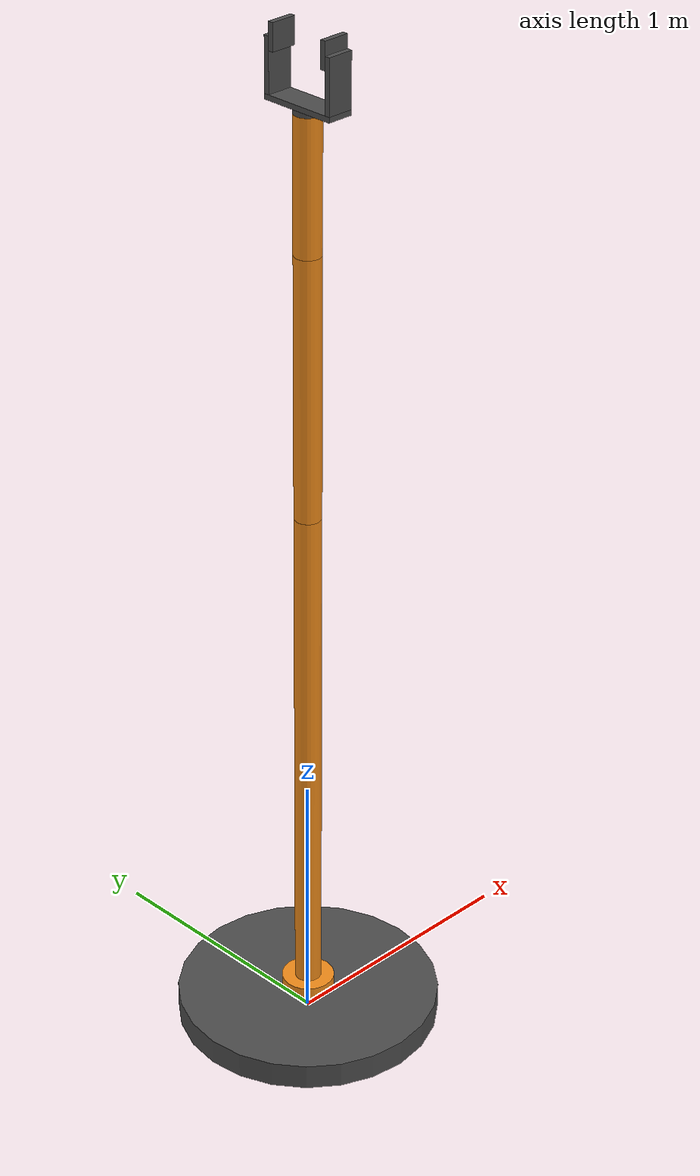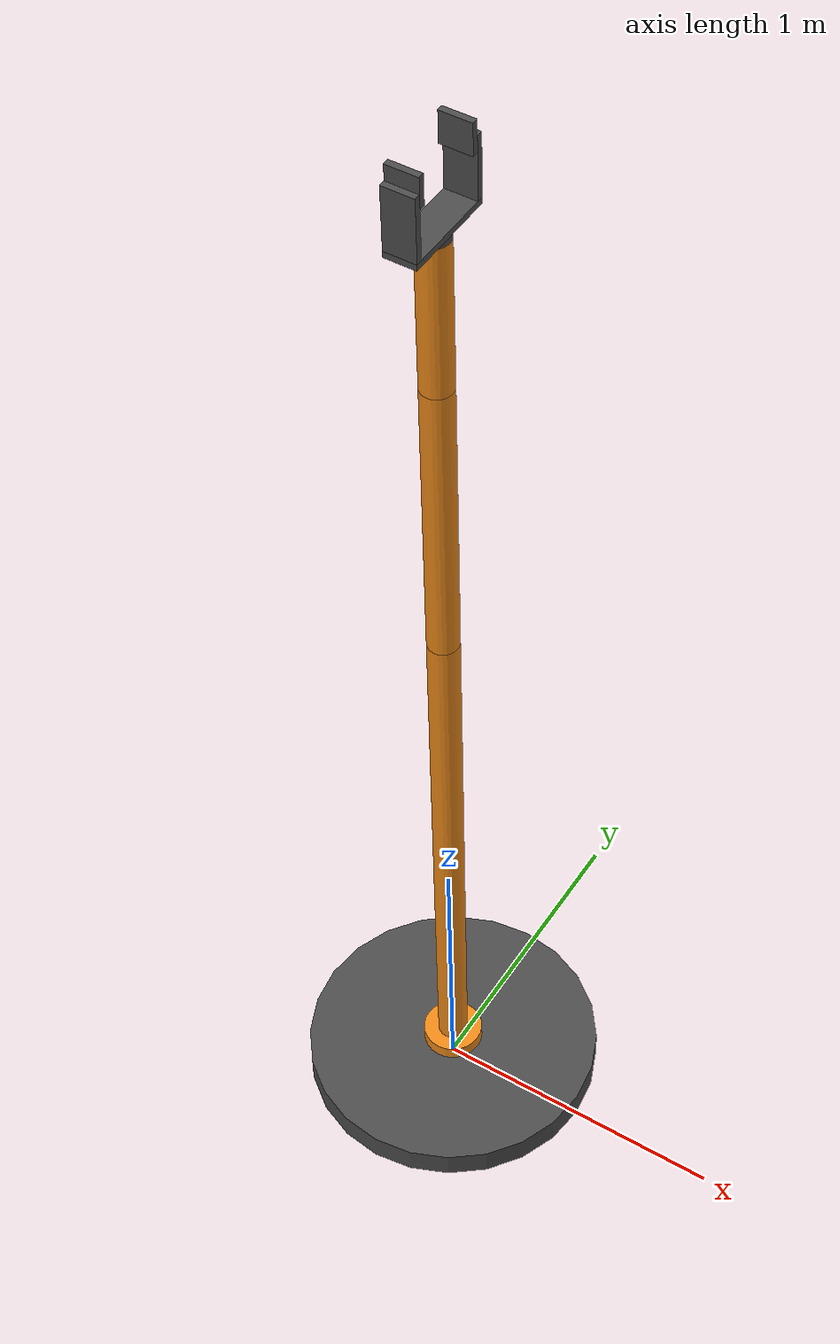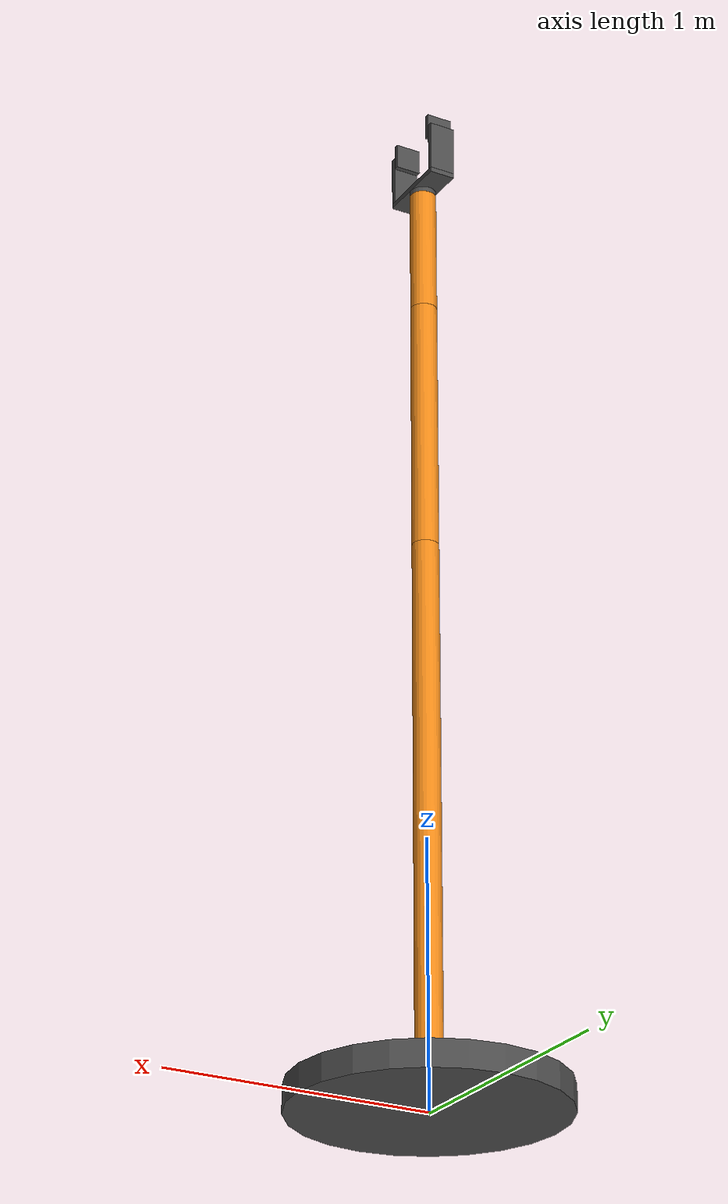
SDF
<?xml version='1.0'?>
<sdf version='1.7'>
    <model name="arm">
        <static>false</static>
        <link name='base'>
            <pose>0 0 .05 0 0 0</pose>
            <inertial>
                <mass>50</mass>
            </inertial>
            <collision name='collision'>
                <geometry>
                    <cylinder>
                        <radius>.5</radius>
                        <length>.1</length>
                    </cylinder>
                </geometry>
            </collision>

            <visual name='visual'>
                <geometry>
                    <cylinder>
                        <radius>.5</radius>
                        <length>.1</length>
                    </cylinder>
                </geometry>
                <material>
                    <script>
                        <name>Gazebo/DarkGrey</name>
                        <uri>file://media/materials/scripts/gazebo.material</uri>
                    </script>
                </material>
            </visual>
        </link>
        <link name='arm1'>
            <pose>0 0 .125 0 0 0</pose>
            <inertial>
                <mass>.05</mass>
            </inertial>
            <collision name='collision'>
                <geometry>
                    <cylinder>
                        <radius>.1</radius>
                        <length>.05</length>
                    </cylinder>
                </geometry>
            </collision>

            <visual name='visual'>
                <geometry>
                    <cylinder>
                        <radius>.1</radius>
                        <length>.05</length>
                    </cylinder>
                </geometry>
                <material>
                    <script>
                        <name>Gazebo/Orange</name>
                        <uri>file://media/materials/scripts/gazebo.material</uri>
                    </script>
                </material>
            </visual>
        </link>
        <link name='arm2'>
            <pose>0 0 1.15 0 0 0</pose>
            <inertial>
                <mass>0.5</mass>
            </inertial>
            <collision name='collision'>
                <geometry>
                    <cylinder>
                        <radius>.05</radius>
                        <length>2.0</length>
                    </cylinder>
                </geometry>
            </collision>

            <visual name='visual'>
                <geometry>
                    <cylinder>
                        <radius>.05</radius>
                        <length>2.0</length>
                    </cylinder>
                </geometry>
                <material>
                    <script>
                        <name>Gazebo/Orange</name>
                        <uri>file://media/materials/scripts/gazebo.material</uri>
                    </script>
                </material>
            </visual>
        </link>
        <link name="arm3">
            <pose>0 0 2.65 0 0 0</pose>
            <inertial>
                <mass>0.25</mass>
            </inertial>
            <collision name="collision">
                <geometry>
                    <cylinder>
                        <radius>.05</radius>
                        <length>1</length>
                    </cylinder>
                </geometry>
            </collision>
            <visual name="visual">
                <geometry>
                    <cylinder>
                        <radius>.05</radius>
                        <length>1</length>
                    </cylinder>
                </geometry>
                <material>
                    <script>
                        <name>Gazebo/Orange</name>
                        <uri>file://media/materials/scripts/gazebo.material</uri>
                    </script>
                </material>
            </visual>
        </link>
        <link name="arm4">
            <pose>0 0 3.4 0 0 0</pose>
            <inertial>
                <mass>.125</mass>
            </inertial>
            <collision name="collision">
                <geometry>
                    <cylinder>
                        <radius>.05</radius>
                        <length>0.5</length>
                    </cylinder>
                </geometry>
            </collision>
            <visual name="visual">
                <geometry>
                    <cylinder>
                        <radius>.05</radius>
                        <length>0.5</length>
                    </cylinder>
                </geometry>
                <material>
                    <script>
                        <name>Gazebo/Orange</name>
                        <uri>file://media/materials/scripts/gazebo.material</uri>
                    </script>
                </material>
            </visual>
        </link>
        <link name="palm">
            <pose>0 0 3.66 0 0 0</pose>
            <inertial>
                <mass>.005</mass>
            </inertial>
            <collision name="collision">
                <geometry>
                    <cylinder>
                        <radius>.05</radius>
                        <length>.02</length>
                    </cylinder>
                </geometry>
            </collision>
            <visual name="visual">
                <geometry>
                    <cylinder>
                        <radius>.05</radius>
                        <length>.02</length>
                    </cylinder>
                </geometry>
                <material>
                    <script>
                        <name>Gazebo/DarkGrey</name>
                        <uri>file://media/materials/scripts/gazebo.material</uri>
                    </script>
                </material>
            </visual>
        </link>
        <link name="palm_jnt">
            <pose>0 0 3.68 0 0 0</pose>
            <inertial>
                <mass>.005</mass>
            </inertial>
            <collision name="collision">
                <geometry>
                    <box>
                        <size>.1 .3 .02</size>
                    </box>
                </geometry>
            </collision>
            <visual name="visual">
                <geometry>
                    <box>
                        <size>.1 .3 .02</size>
                    </box>
                </geometry>
                <material>
                    <script>
                        <name>Gazebo/DarkGrey</name>
                        <uri>file://media/materials/scripts/gazebo.material</uri>
                    </script>
                </material>
            </visual>

        </link>
        <link name="left_finger">
            <gravity>0</gravity>
            <pose>0 0.14 3.79 0 0 0</pose>
            <inertial>
                <mass>.005</mass>
            </inertial>
            <collision name="collision">
                <geometry>
                    <box>
                        <size>.1 .02 .2</size>
                    </box>
                </geometry>
                <surface>
                    <friction>
                        <ode>
                            <mu>500</mu>
                            <mu2>500</mu2>
                            <slip1>0.0</slip1>
                            <slip2>0.0</slip2>
                        </ode>
                    </friction>
                </surface>
            </collision>
            <visual name="visual">
                <geometry>
                    <box>
                        <size>.1 .02 .2</size>
                    </box>
                </geometry>
                <material>
                    <script>
                        <name>Gazebo/DarkGrey</name>
                        <uri>file://media/materials/scripts/gazebo.material</uri>
                    </script>
                </material>
            </visual>

        </link>
        <link name="left_finger_tip">
            <pose>0 0.12 3.89 0 0 0</pose>
            <inertial>
                <mass>.005</mass>
            </inertial>
            <collision name="collision">
                <geometry>
                    <box>
                        <size>.1 .02 .1</size>
                    </box>
                </geometry>
                <surface>
                    <friction>
                        <ode>
                            <mu>500</mu>
                            <mu2>500</mu2>
                            <slip1>0.0</slip1>
                            <slip2>0.0</slip2>
                        </ode>
                    </friction>
                </surface>
            </collision>
            <visual name="visual">
                <geometry>
                    <box>
                        <size>.1 .02 .1</size>
                    </box>
                </geometry>
                <material>
                    <script>
                        <name>Gazebo/DarkGrey</name>
                        <uri>file://media/materials/scripts/gazebo.material</uri>
                    </script>
                </material>
            </visual>
        </link>
        <link name="right_finger">
            <pose>0 -0.14 3.79 0 0 0</pose>
            <inertial>
                <mass>.005</mass>
            </inertial>
            <collision name="collision">
                <geometry>
                    <box>
                        <size>.1 .02 .2</size>
                    </box>
                </geometry>
                <surface>
                    <friction>
                        <ode>
                            <mu>500</mu>
                            <mu2>500</mu2>
                            <slip1>0.0</slip1>
                            <slip2>0.0</slip2>
                        </ode>
                    </friction>
                </surface>
            </collision>
            <visual name="visual">
                <geometry>
                    <box>
                        <size>.1 .02 .2</size>
                    </box>
                </geometry>
                <material>
                    <script>
                        <name>Gazebo/DarkGrey</name>
                        <uri>file://media/materials/scripts/gazebo.material</uri>
                    </script>
                </material>
            </visual>
        </link>
        <link name="right_finger_tip">
            <pose>0 -0.12 3.89 0 0 0</pose>
            <inertial>
                <mass>.005</mass>
            </inertial>
            <collision name="collision">
                <geometry>
                    <box>
                        <size>.1 .02 .1</size>
                    </box>
                </geometry>
                <surface>
                    <friction>
                        <ode>
                            <mu>500</mu>
                            <mu2>500</mu2>
                            <slip1>0.0</slip1>
                            <slip2>0.0</slip2>
                        </ode>
                    </friction>
                </surface>
            </collision>
            <visual name="visual">
                <geometry>
                    <box>
                        <size>.1 .02 .1</size>
                    </box>
                </geometry>
                <material>
                    <script>
                        <name>Gazebo/DarkGrey</name>
                        <uri>file://media/materials/scripts/gazebo.material</uri>
                    </script>
                </material>
            </visual>
        </link>
        <joint type="revolute" name="base_arm1_joint">
            <pose>0 0 -0.025 0 0 0</pose>
            <child>arm1</child>
            <parent>base</parent>
            <axis>
                <xyz>0 0 1</xyz>
                <dynamics>
                    <damping>2.0</damping>
                    <friction>0.7</friction>
                </dynamics>
                <limit>
                    <effort>100</effort>
                    <velocity>1.0</velocity>
                </limit>
            </axis>
        </joint>
        <joint type="revolute" name="arm1_arm2_joint">
            <pose>0 0 -1 0 0 0</pose>
            <child>arm2</child>
            <parent>arm1</parent>
            <axis>
                <xyz>1 0 0</xyz>
                <dynamics>
                    <damping>1.0</damping>
                    <friction>0.3</friction>
                </dynamics>
                <limit>
                    <lower>-1.0</lower>
                    <upper>1.0</upper>
                    <effort>100</effort>
                    <velocity>1.0</velocity>
                </limit>
            </axis>
        </joint>
        <joint name="arm2_arm3_joint" type="revolute">
            <parent>
                arm2
            </parent>
            <child>
                arm3
            </child>
            <pose>
                0 0 -0.5 0 0 0</pose>
            <axis>
                <xyz>
                    1 0 0
                </xyz>
                <dynamics>
                    <damping>1.0</damping>
                    <friction>0.3</friction>
                </dynamics>
                <limit>
                    <effort>100</effort>
                    <velocity>1.0</velocity>
                </limit>
            </axis>
        </joint>
        <joint name="arm3_arm4_joint" type="revolute">
            <parent>
                arm3
            </parent>
            <child>
                arm4
            </child>
            <pose>
                0 0 -0.25 0 0 0</pose>
            <axis>
                <xyz>
                    1 0 0
                </xyz>
                <dynamics>
                    <damping>1.0</damping>
                    <friction>0.3</friction>
                </dynamics>
                <limit>
                    <effort>100</effort>
                    <velocity>1.0</velocity>
                </limit>
            </axis>
        </joint>
        <joint name="arm4_palm_joint" type="revolute">
            <parent>
                arm4
            </parent>
            <child>
                palm
            </child>
            <pose>
                0 0 -0.01 0 0 0</pose>
            <axis>
                <xyz>
                    0 0 1
                </xyz>
                <dynamics>
                    <damping>1.0</damping>
                    <friction>0.3</friction>
                </dynamics>
                <limit>
                    <effort>100</effort>
                    <velocity>1.0</velocity>
                </limit>
            </axis>

        </joint>
        <joint name="palm_jnt_joint" type="revolute">
            <parent>
                palm
            </parent>
            <child>
                palm_jnt
            </child>
            <pose>
                0 0 -0.01 0 0 0</pose>
            <axis>
                <xyz>
                    1 0 0
                </xyz>
                <dynamics>
                    <damping>1.0</damping>
                    <friction>0.3</friction>
                </dynamics>
                <limit>
                    <effort>100</effort>
                    <velocity>1.0</velocity>
                </limit>
            </axis>
        </joint>
        <joint name="palm_left_finger" type="revolute">
            <child>left_finger</child>
            <parent>palm_jnt</parent>
            <pose>
                0 0 -0.1 0 0 0</pose>
            <axis>
                <xyz>
                    1 0 0</xyz>
                <dynamics>
                    <damping>1.0</damping>
                    <friction>0.3</friction>
                </dynamics>
                <limit>
                    <lower>-0.7</lower>
                    <upper>0.7</upper>
                    <effort>100</effort>
                    <velocity>1.0</velocity>
                </limit>
            </axis>

        </joint>
        <joint name="left_finger_tip_joint" type="revolute">
            <child>left_finger_tip</child>
            <parent>left_finger</parent>
            <pose>
                0 0 0 0 0 0</pose>
            <axis>
                <xyz>
                    1 0 0
                </xyz>
                <dynamics>
                    <damping>1.0</damping>
                    <friction>0.3</friction>
                </dynamics>
                <limit>
                    <lower>-0.7</lower>
                    <upper>0.7</upper>
                    <effort>100</effort>
                    <velocity>1.0</velocity>
                </limit>
            </axis>

        </joint>
        <joint name="palm_right_finger" type="revolute">
            <child>right_finger</child>
            <parent>palm_jnt</parent>
            <pose>
                0 0 -0.1 0 0 0</pose>
            <axis>
                <xyz>
                    1 0 0
                </xyz>
                <dynamics>
                    <damping>1.0</damping>
                    <friction>0.3</friction>
                </dynamics>
                <limit>
                    <lower>-0.7</lower>
                    <upper>0.7</upper>
                    <effort>100</effort>
                    <velocity>1.0</velocity>
                </limit>
            </axis>
        </joint>
        <joint name="right_finger_tip_joint" type="revolute">
            <child>right_finger_tip</child>
            <parent>right_finger</parent>
            <pose>
                0 0 0 0 0 0</pose>
            <axis>
                <xyz>
                    1 0 0
                </xyz>
                <dynamics>
                    <damping>1.0</damping>
                    <friction>0.3</friction>
                </dynamics>
                <limit>
                    <lower>-0.7</lower>
                    <upper>0.7</upper>
                    <effort>100</effort>
                    <velocity>1.0</velocity>
                </limit>
            </axis>
        </joint>
        <plugin name="arm_control" filename="libarm_gazebo.so"/>
    </model>
</sdf>
